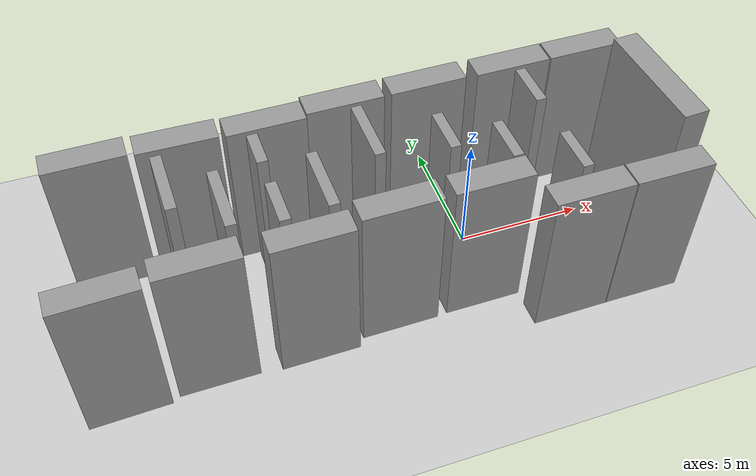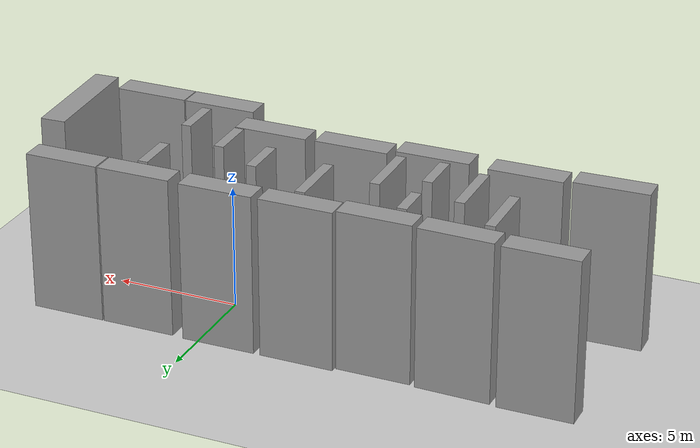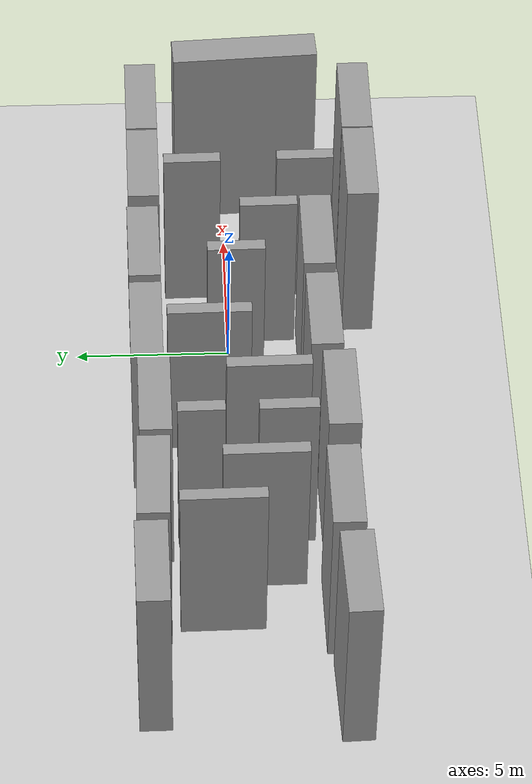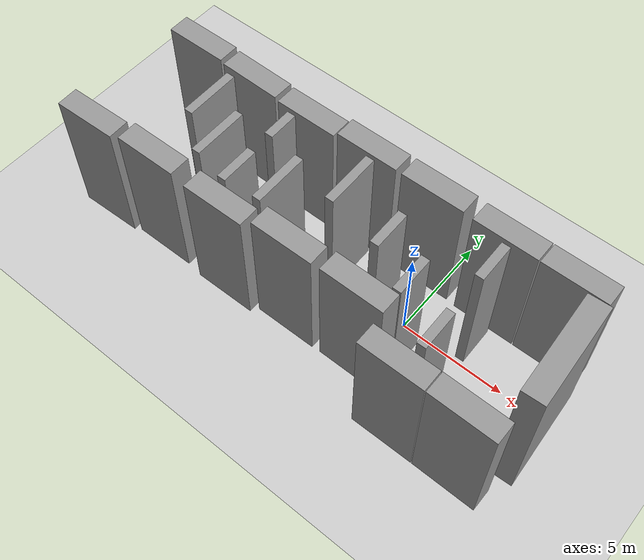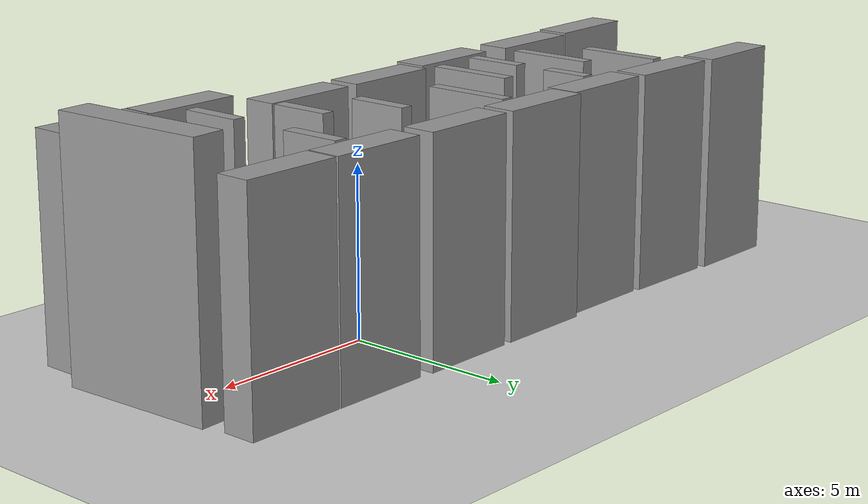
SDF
<sdf version="1.7">
 <world name="default">
  <model name="ground_plane">
   <static>1</static>
   <link name="link">
    <collision name="collision">
     <geometry><plane><normal>0 0 1</normal><size>100 100</size></plane></geometry>
     <surface>
      <contact><collide_bitmask>65535</collide_bitmask></contact>
      <friction><ode><mu>100</mu><mu2>50</mu2></ode></friction>
     </surface>
    </collision>
    <visual name="visual">
     <cast_shadows>0</cast_shadows>
     <geometry><plane><normal>0 0 1</normal><size>100 100</size></plane></geometry>
     <material>
      <script><uri>file://media/materials/scripts/gazebo.material</uri><name>Gazebo/Grey</name></script>
     </material>
    </visual>
   </link>
  </model>
  <gravity>0 0 -9.8</gravity>
  <magnetic_field>6e-06 2.3e-05 -4.2e-05</magnetic_field>
  <atmosphere type="adiabatic"/>
  <physics type="ode">
   <max_step_size>0.001</max_step_size>
   <real_time_factor>1</real_time_factor>
   <real_time_update_rate>1000</real_time_update_rate>
  </physics>
  <scene><ambient>0.4 0.4 0.4 1</ambient><background>0.7 0.7 0.7 1</background><shadows>1</shadows></scene>
  <spherical_coordinates>
   <surface_model>EARTH_WGS84</surface_model>
   <latitude_deg>0</latitude_deg>
   <longitude_deg>0</longitude_deg>
   <elevation>0</elevation>
   <heading_deg>0</heading_deg>
  </spherical_coordinates>
  <model name="unit_box_clone">
   <pose>2.55891 2.70262 3.24502 0 1e-06 0.00438</pose>
   <link name="link">
    <inertial>
     <mass>1</mass>
     <inertia>
      <ixx>0.166667</ixx>
      <ixy>0</ixy>
      <ixz>0</ixz>
      <iyy>0.166667</iyy>
      <iyz>0</iyz>
      <izz>0.166667</izz>
     </inertia>
    </inertial>
    <collision name="collision"><geometry><box><size>2.97291 1 6.49004</size></box></geometry></collision>
    <visual name="visual">
     <geometry><box><size>2.97291 1 6.49004</size></box></geometry>
     <material>
      <script><name>Gazebo/Grey</name><uri>file://media/materials/scripts/gazebo.material</uri></script>
     </material>
    </visual>
   </link>
   <static>1</static>
  </model>
  <model name="unit_box_clone_clone">
   <pose>5.59233 2.71588 3.24502 0 -1e-06 0.004397</pose>
   <link name="link">
    <inertial>
     <mass>1</mass>
     <inertia>
      <ixx>0.166667</ixx>
      <ixy>0</ixy>
      <ixz>0</ixz>
      <iyy>0.166667</iyy>
      <iyz>0</iyz>
      <izz>0.166667</izz>
     </inertia>
    </inertial>
    <collision name="collision"><geometry><box><size>2.97291 1 6.49004</size></box></geometry></collision>
    <visual name="visual">
     <geometry><box><size>2.97291 1 6.49004</size></box></geometry>
     <material>
      <script><name>Gazebo/Grey</name><uri>file://media/materials/scripts/gazebo.material</uri></script>
     </material>
    </visual>
   </link>
   <static>1</static>
  </model>
  <model name="unit_box_clone_clone_0">
   <pose>-0.521164 -2.75724 3.24502 0 1e-06 0.002824</pose>
   <link name="link">
    <inertial>
     <mass>1</mass>
     <inertia>
      <ixx>0.166667</ixx>
      <ixy>0</ixy>
      <ixz>0</ixz>
      <iyy>0.166667</iyy>
      <iyz>0</iyz>
      <izz>0.166667</izz>
     </inertia>
    </inertial>
    <collision name="collision"><geometry><box><size>2.97291 1 6.49004</size></box></geometry></collision>
    <visual name="visual">
     <geometry><box><size>2.97291 1 6.49004</size></box></geometry>
     <material>
      <script><name>Gazebo/Grey</name><uri>file://media/materials/scripts/gazebo.material</uri></script>
     </material>
    </visual>
   </link>
   <static>1</static>
  </model>
  <model name="unit_box_clone_clone_0_clone">
   <pose>2.44364 -4.28965 3.24502 0 1e-06 0.005945</pose>
   <link name="link">
    <inertial>
     <mass>1</mass>
     <inertia>
      <ixx>0.166667</ixx>
      <ixy>0</ixy>
      <ixz>0</ixz>
      <iyy>0.166667</iyy>
      <iyz>0</iyz>
      <izz>0.166667</izz>
     </inertia>
    </inertial>
    <collision name="collision"><geometry><box><size>2.97291 1 6.49004</size></box></geometry></collision>
    <visual name="visual">
     <geometry><box><size>2.97291 1 6.49004</size></box></geometry>
     <material>
      <script><name>Gazebo/Grey</name><uri>file://media/materials/scripts/gazebo.material</uri></script>
     </material>
    </visual>
   </link>
   <static>1</static>
  </model>
  <model name="unit_box_clone_clone_0_clone_0">
   <pose>5.45965 -4.28243 3.24502 0 1e-06 -0.00234</pose>
   <link name="link">
    <inertial>
     <mass>1</mass>
     <inertia>
      <ixx>0.166667</ixx>
      <ixy>0</ixy>
      <ixz>0</ixz>
      <iyy>0.166667</iyy>
      <iyz>0</iyz>
      <izz>0.166667</izz>
     </inertia>
    </inertial>
    <collision name="collision"><geometry><box><size>2.97291 1 6.49004</size></box></geometry></collision>
    <visual name="visual">
     <geometry><box><size>2.97291 1 6.49004</size></box></geometry>
     <material>
      <script><name>Gazebo/Grey</name><uri>file://media/materials/scripts/gazebo.material</uri></script>
     </material>
    </visual>
   </link>
   <static>1</static>
  </model>
  <model name="unit_box_0">
   <pose>6.91148 -0.71365 3.65057 0 -0 0.051065</pose>
   <link name="link">
    <inertial>
     <mass>1</mass>
     <inertia>
      <ixx>0.166667</ixx>
      <ixy>0</ixy>
      <ixz>0</ixz>
      <iyy>0.166667</iyy>
      <iyz>0</iyz>
      <izz>0.166667</izz>
     </inertia>
    </inertial>
    <collision name="collision"><geometry><box><size>1 4.71151 7.30114</size></box></geometry></collision>
    <visual name="visual">
     <geometry><box><size>1 4.71151 7.30114</size></box></geometry>
     <material>
      <script><name>Gazebo/Grey</name><uri>file://media/materials/scripts/gazebo.material</uri></script>
     </material>
    </visual>
   </link>
   <static>1</static>
  </model>
  <light name="user_directional_light_0" type="directional">
   <pose>-4.64306 0.087706 1 0 -0 0</pose>
   <diffuse>0.5 0.5 0.5 1</diffuse>
   <specular>0.1 0.1 0.1 1</specular>
   <direction>0.1 0.1 -0.9</direction>
   <attenuation>
    <range>20</range>
    <constant>0.5</constant>
    <linear>0.01</linear>
    <quadratic>0.001</quadratic>
   </attenuation>
   <spot><inner_angle>0</inner_angle><outer_angle>0</outer_angle><falloff>0</falloff></spot>
  </light>
  <model name="unit_box_clone_clone_1_clone_0">
   <pose>-7.12471 2.50819 3.24502 -0 1e-06 0.002896</pose>
   <link name="link">
    <inertial>
     <mass>1</mass>
     <inertia>
      <ixx>0.166667</ixx>
      <ixy>0</ixy>
      <ixz>0</ixz>
      <iyy>0.166667</iyy>
      <iyz>0</iyz>
      <izz>0.166667</izz>
     </inertia>
    </inertial>
    <collision name="collision"><geometry><box><size>2.97291 1 6.49004</size></box></geometry></collision>
    <visual name="visual">
     <geometry><box><size>2.97291 1 6.49004</size></box></geometry>
     <material>
      <script><name>Gazebo/Grey</name><uri>file://media/materials/scripts/gazebo.material</uri></script>
     </material>
    </visual>
   </link>
   <static>1</static>
  </model>
  <model name="unit_box_clone_clone_1_clone_3">
   <pose>-3.87202 -2.81599 3.24502 -0 -1e-06 0.009449</pose>
   <link name="link">
    <inertial>
     <mass>1</mass>
     <inertia>
      <ixx>0.166667</ixx>
      <ixy>0</ixy>
      <ixz>0</ixz>
      <iyy>0.166667</iyy>
      <iyz>0</iyz>
      <izz>0.166667</izz>
     </inertia>
    </inertial>
    <collision name="collision"><geometry><box><size>2.97291 1 6.49004</size></box></geometry></collision>
    <visual name="visual">
     <geometry><box><size>2.97291 1 6.49004</size></box></geometry>
     <material>
      <script><name>Gazebo/Grey</name><uri>file://media/materials/scripts/gazebo.material</uri></script>
     </material>
    </visual>
   </link>
   <static>1</static>
  </model>
  <model name="unit_box_clone_clone_1_clone_6">
   <pose>-14.0826 -3.34189 3.24502 0 1e-06 0.034145</pose>
   <link name="link">
    <inertial>
     <mass>1</mass>
     <inertia>
      <ixx>0.166667</ixx>
      <ixy>0</ixy>
      <ixz>0</ixz>
      <iyy>0.166667</iyy>
      <iyz>0</iyz>
      <izz>0.166667</izz>
     </inertia>
    </inertial>
    <collision name="collision"><geometry><box><size>2.97291 1 6.49004</size></box></geometry></collision>
    <visual name="visual">
     <geometry><box><size>2.97291 1 6.49004</size></box></geometry>
     <material>
      <script><name>Gazebo/Grey</name><uri>file://media/materials/scripts/gazebo.material</uri></script>
     </material>
    </visual>
   </link>
   <static>1</static>
  </model>
  <model name="unit_box_clone_clone_1_clone_0_clone">
   <pose>-10.3083 2.60539 3.24502 0 -1e-06 -0.019275</pose>
   <link name="link">
    <inertial>
     <mass>1</mass>
     <inertia>
      <ixx>0.166667</ixx>
      <ixy>0</ixy>
      <ixz>0</ixz>
      <iyy>0.166667</iyy>
      <iyz>0</iyz>
      <izz>0.166667</izz>
     </inertia>
    </inertial>
    <collision name="collision"><geometry><box><size>2.97291 1 6.49004</size></box></geometry></collision>
    <visual name="visual">
     <geometry><box><size>2.97291 1 6.49004</size></box></geometry>
     <material>
      <script><name>Gazebo/Grey</name><uri>file://media/materials/scripts/gazebo.material</uri></script>
     </material>
    </visual>
   </link>
   <static>1</static>
  </model>
  <model name="unit_box_clone_clone_1_clone_0_clone_0">
   <pose>-13.5287 2.70207 3.24502 0 -1e-06 0.007079</pose>
   <link name="link">
    <inertial>
     <mass>1</mass>
     <inertia>
      <ixx>0.166667</ixx>
      <ixy>0</ixy>
      <ixz>0</ixz>
      <iyy>0.166667</iyy>
      <iyz>0</iyz>
      <izz>0.166667</izz>
     </inertia>
    </inertial>
    <collision name="collision"><geometry><box><size>2.97291 1 6.49004</size></box></geometry></collision>
    <visual name="visual">
     <geometry><box><size>2.97291 1 6.49004</size></box></geometry>
     <material>
      <script><name>Gazebo/Grey</name><uri>file://media/materials/scripts/gazebo.material</uri></script>
     </material>
    </visual>
   </link>
   <static>1</static>
  </model>
  <model name="unit_box_clone_clone_1_clone_0_clone_2">
   <pose>-0.861499 2.73134 3.24502 0 1e-06 0.009304</pose>
   <link name="link">
    <inertial>
     <mass>1</mass>
     <inertia>
      <ixx>0.166667</ixx>
      <ixy>0</ixy>
      <ixz>0</ixz>
      <iyy>0.166667</iyy>
      <iyz>0</iyz>
      <izz>0.166667</izz>
     </inertia>
    </inertial>
    <collision name="collision"><geometry><box><size>2.97291 1 6.49004</size></box></geometry></collision>
    <visual name="visual">
     <geometry><box><size>2.97291 1 6.49004</size></box></geometry>
     <material>
      <script><name>Gazebo/Grey</name><uri>file://media/materials/scripts/gazebo.material</uri></script>
     </material>
    </visual>
   </link>
   <static>1</static>
  </model>
  <model name="unit_box_clone_clone_1_clone_0_clone_3">
   <pose>-4.10547 2.71434 3.24502 -0 1e-06 0.003729</pose>
   <link name="link">
    <inertial>
     <mass>1</mass>
     <inertia>
      <ixx>0.166667</ixx>
      <ixy>0</ixy>
      <ixz>0</ixz>
      <iyy>0.166667</iyy>
      <iyz>0</iyz>
      <izz>0.166667</izz>
     </inertia>
    </inertial>
    <collision name="collision"><geometry><box><size>2.97291 1 6.49004</size></box></geometry></collision>
    <visual name="visual">
     <geometry><box><size>2.97291 1 6.49004</size></box></geometry>
     <material>
      <script><name>Gazebo/Grey</name><uri>file://media/materials/scripts/gazebo.material</uri></script>
     </material>
    </visual>
   </link>
   <static>1</static>
  </model>
  <model name="unit_box_clone_clone_1_clone_3_clone">
   <pose>-7.07187 -3.1816 3.24502 -0 -1e-06 0.011153</pose>
   <link name="link">
    <inertial>
     <mass>1</mass>
     <inertia>
      <ixx>0.166667</ixx>
      <ixy>0</ixy>
      <ixz>0</ixz>
      <iyy>0.166667</iyy>
      <iyz>0</iyz>
      <izz>0.166667</izz>
     </inertia>
    </inertial>
    <collision name="collision"><geometry><box><size>2.97291 1 6.49004</size></box></geometry></collision>
    <visual name="visual">
     <geometry><box><size>2.97291 1 6.49004</size></box></geometry>
     <material>
      <script><name>Gazebo/Grey</name><uri>file://media/materials/scripts/gazebo.material</uri></script>
     </material>
    </visual>
   </link>
   <static>1</static>
  </model>
  <model name="unit_box_clone_clone_1_clone_3_clone_0">
   <pose>-10.8282 -3.09869 3.24502 0 -1e-06 0.00953</pose>
   <link name="link">
    <inertial>
     <mass>1</mass>
     <inertia>
      <ixx>0.166667</ixx>
      <ixy>0</ixy>
      <ixz>0</ixz>
      <iyy>0.166667</iyy>
      <iyz>0</iyz>
      <izz>0.166667</izz>
     </inertia>
    </inertial>
    <collision name="collision"><geometry><box><size>2.97291 1 6.49004</size></box></geometry></collision>
    <visual name="visual">
     <geometry><box><size>2.97291 1 6.49004</size></box></geometry>
     <material>
      <script><name>Gazebo/Grey</name><uri>file://media/materials/scripts/gazebo.material</uri></script>
     </material>
    </visual>
   </link>
   <static>1</static>
  </model>
  <model name="unit_box_clone_clone_1_clone_0_clone_0_clone">
   <pose>-11.1182 0.540337 3.24502 -5e-06 -0 -1.5583</pose>
   <link name="link">
    <inertial>
     <mass>1</mass>
     <inertia>
      <ixx>0.166667</ixx>
      <ixy>0</ixy>
      <ixz>0</ixz>
      <iyy>0.166667</iyy>
      <iyz>0</iyz>
      <izz>0.166667</izz>
     </inertia>
    </inertial>
    <collision name="collision"><geometry><box><size>2.63243 0.403234 6.49004</size></box></geometry></collision>
    <visual name="visual">
     <geometry><box><size>2.63243 0.403234 6.49004</size></box></geometry>
     <material>
      <script><name>Gazebo/Grey</name><uri>file://media/materials/scripts/gazebo.material</uri></script>
     </material>
    </visual>
   </link>
   <static>1</static>
  </model>
  <model name="unit_box_clone_clone_1_clone_0_clone_0_clone_clone">
   <pose>-9.42238 -0.797717 3.24502 0 -1e-06 -1.55829</pose>
   <link name="link">
    <inertial>
     <mass>1</mass>
     <inertia>
      <ixx>0.166667</ixx>
      <ixy>0</ixy>
      <ixz>0</ixz>
      <iyy>0.166667</iyy>
      <iyz>0</iyz>
      <izz>0.166667</izz>
     </inertia>
    </inertial>
    <collision name="collision"><geometry><box><size>2.63243 0.403234 6.49004</size></box></geometry></collision>
    <visual name="visual">
     <geometry><box><size>2.63243 0.403234 6.49004</size></box></geometry>
     <material>
      <script><name>Gazebo/Grey</name><uri>file://media/materials/scripts/gazebo.material</uri></script>
     </material>
    </visual>
   </link>
   <static>1</static>
  </model>
  <model name="unit_box_clone_clone_1_clone_0_clone_0_clone_clone_0">
   <pose>-7.69232 -1.55503 3.24502 -1e-06 -1e-06 -1.55829</pose>
   <link name="link">
    <inertial>
     <mass>1</mass>
     <inertia>
      <ixx>0.166667</ixx>
      <ixy>0</ixy>
      <ixz>0</ixz>
      <iyy>0.166667</iyy>
      <iyz>0</iyz>
      <izz>0.166667</izz>
     </inertia>
    </inertial>
    <collision name="collision"><geometry><box><size>1.82555 0.403234 6.49004</size></box></geometry></collision>
    <visual name="visual">
     <geometry><box><size>1.82555 0.403234 6.49004</size></box></geometry>
     <material>
      <script><name>Gazebo/Grey</name><uri>file://media/materials/scripts/gazebo.material</uri></script>
     </material>
    </visual>
   </link>
   <static>1</static>
  </model>
  <model name="unit_box_clone_clone_1_clone_0_clone_0_clone_clone_0_clone">
   <pose>-7.71086 1.10788 3.24503 5.9e-05 1e-06 -1.55828</pose>
   <link name="link">
    <inertial>
     <mass>1</mass>
     <inertia>
      <ixx>0.166667</ixx>
      <ixy>0</ixy>
      <ixz>0</ixz>
      <iyy>0.166667</iyy>
      <iyz>0</iyz>
      <izz>0.166667</izz>
     </inertia>
    </inertial>
    <collision name="collision"><geometry><box><size>1.45727 0.403234 6.49004</size></box></geometry></collision>
    <visual name="visual">
     <geometry><box><size>1.45727 0.403234 6.49004</size></box></geometry>
     <material>
      <script><name>Gazebo/Grey</name><uri>file://media/materials/scripts/gazebo.material</uri></script>
     </material>
    </visual>
   </link>
   <static>1</static>
  </model>
  <model name="unit_box_clone_clone_1_clone_0_clone_0_clone_clone_clone">
   <pose>-5.97923 -1.02072 3.24502 3e-06 -1e-06 -1.5583</pose>
   <link name="link">
    <inertial>
     <mass>1</mass>
     <inertia>
      <ixx>0.166667</ixx>
      <ixy>0</ixy>
      <ixz>0</ixz>
      <iyy>0.166667</iyy>
      <iyz>0</iyz>
      <izz>0.166667</izz>
     </inertia>
    </inertial>
    <collision name="collision"><geometry><box><size>2.63243 0.403234 6.49004</size></box></geometry></collision>
    <visual name="visual">
     <geometry><box><size>2.63243 0.403234 6.49004</size></box></geometry>
     <material>
      <script><name>Gazebo/Grey</name><uri>file://media/materials/scripts/gazebo.material</uri></script>
     </material>
    </visual>
   </link>
   <static>1</static>
  </model>
  <model name="unit_box_clone_clone_1_clone_0_clone_0_clone_clone_clone_0">
   <pose>-3.76223 0.742318 3.24502 -1e-06 -1e-06 -1.55829</pose>
   <link name="link">
    <inertial>
     <mass>1</mass>
     <inertia>
      <ixx>0.166667</ixx>
      <ixy>0</ixy>
      <ixz>0</ixz>
      <iyy>0.166667</iyy>
      <iyz>0</iyz>
      <izz>0.166667</izz>
     </inertia>
    </inertial>
    <collision name="collision"><geometry><box><size>2.63243 0.403234 6.49004</size></box></geometry></collision>
    <visual name="visual">
     <geometry><box><size>2.63243 0.403234 6.49004</size></box></geometry>
     <material>
      <script><name>Gazebo/Grey</name><uri>file://media/materials/scripts/gazebo.material</uri></script>
     </material>
    </visual>
   </link>
   <static>1</static>
  </model>
  <model name="unit_box_clone_clone_1_clone_0_clone_0_clone_clone_0_clone_0">
   <pose>-1.14038 -0.176488 3.24502 0 1e-06 -1.55828</pose>
   <link name="link">
    <inertial>
     <mass>1</mass>
     <inertia>
      <ixx>0.166667</ixx>
      <ixy>0</ixy>
      <ixz>0</ixz>
      <iyy>0.166667</iyy>
      <iyz>0</iyz>
      <izz>0.166667</izz>
     </inertia>
    </inertial>
    <collision name="collision"><geometry><box><size>1.82555 0.403234 6.49004</size></box></geometry></collision>
    <visual name="visual">
     <geometry><box><size>1.82555 0.403234 6.49004</size></box></geometry>
     <material>
      <script><name>Gazebo/Grey</name><uri>file://media/materials/scripts/gazebo.material</uri></script>
     </material>
    </visual>
   </link>
   <static>1</static>
  </model>
  <model name="unit_box_clone_clone_1_clone_0_clone_0_clone_clone_0_clone_1">
   <pose>0.750088 -1.26778 3.24502 0 -1e-06 -1.5583</pose>
   <link name="link">
    <inertial>
     <mass>1</mass>
     <inertia>
      <ixx>0.166667</ixx>
      <ixy>0</ixy>
      <ixz>0</ixz>
      <iyy>0.166667</iyy>
      <iyz>0</iyz>
      <izz>0.166667</izz>
     </inertia>
    </inertial>
    <collision name="collision"><geometry><box><size>1.82555 0.403234 6.49004</size></box></geometry></collision>
    <visual name="visual">
     <geometry><box><size>1.82555 0.403234 6.49004</size></box></geometry>
     <material>
      <script><name>Gazebo/Grey</name><uri>file://media/materials/scripts/gazebo.material</uri></script>
     </material>
    </visual>
   </link>
   <static>1</static>
  </model>
  <model name="unit_box_clone_clone_1_clone_0_clone_0_clone_clone_0_clone_2">
   <pose>2.74123 1.11735 3.24502 0 1e-06 -1.5583</pose>
   <link name="link">
    <inertial>
     <mass>1</mass>
     <inertia>
      <ixx>0.166667</ixx>
      <ixy>0</ixy>
      <ixz>0</ixz>
      <iyy>0.166667</iyy>
      <iyz>0</iyz>
      <izz>0.166667</izz>
     </inertia>
    </inertial>
    <collision name="collision"><geometry><box><size>1.82555 0.403234 6.49004</size></box></geometry></collision>
    <visual name="visual">
     <geometry><box><size>1.82555 0.403234 6.49004</size></box></geometry>
     <material>
      <script><name>Gazebo/Grey</name><uri>file://media/materials/scripts/gazebo.material</uri></script>
     </material>
    </visual>
   </link>
   <static>1</static>
  </model>
  <model name="unit_box_clone_clone_1_clone_0_clone_0_clone_clone_0_clone_3">
   <pose>2.79145 -2.52588 3.24502 0 -0 -1.55831</pose>
   <link name="link">
    <inertial>
     <mass>1</mass>
     <inertia>
      <ixx>0.166667</ixx>
      <ixy>0</ixy>
      <ixz>0</ixz>
      <iyy>0.166667</iyy>
      <iyz>0</iyz>
      <izz>0.166667</izz>
     </inertia>
    </inertial>
    <collision name="collision"><geometry><box><size>1.82555 0.403234 6.49004</size></box></geometry></collision>
    <visual name="visual">
     <geometry><box><size>1.82555 0.403234 6.49004</size></box></geometry>
     <material>
      <script><name>Gazebo/Grey</name><uri>file://media/materials/scripts/gazebo.material</uri></script>
     </material>
    </visual>
   </link>
   <static>1</static>
  </model>
 </world>
</sdf>
